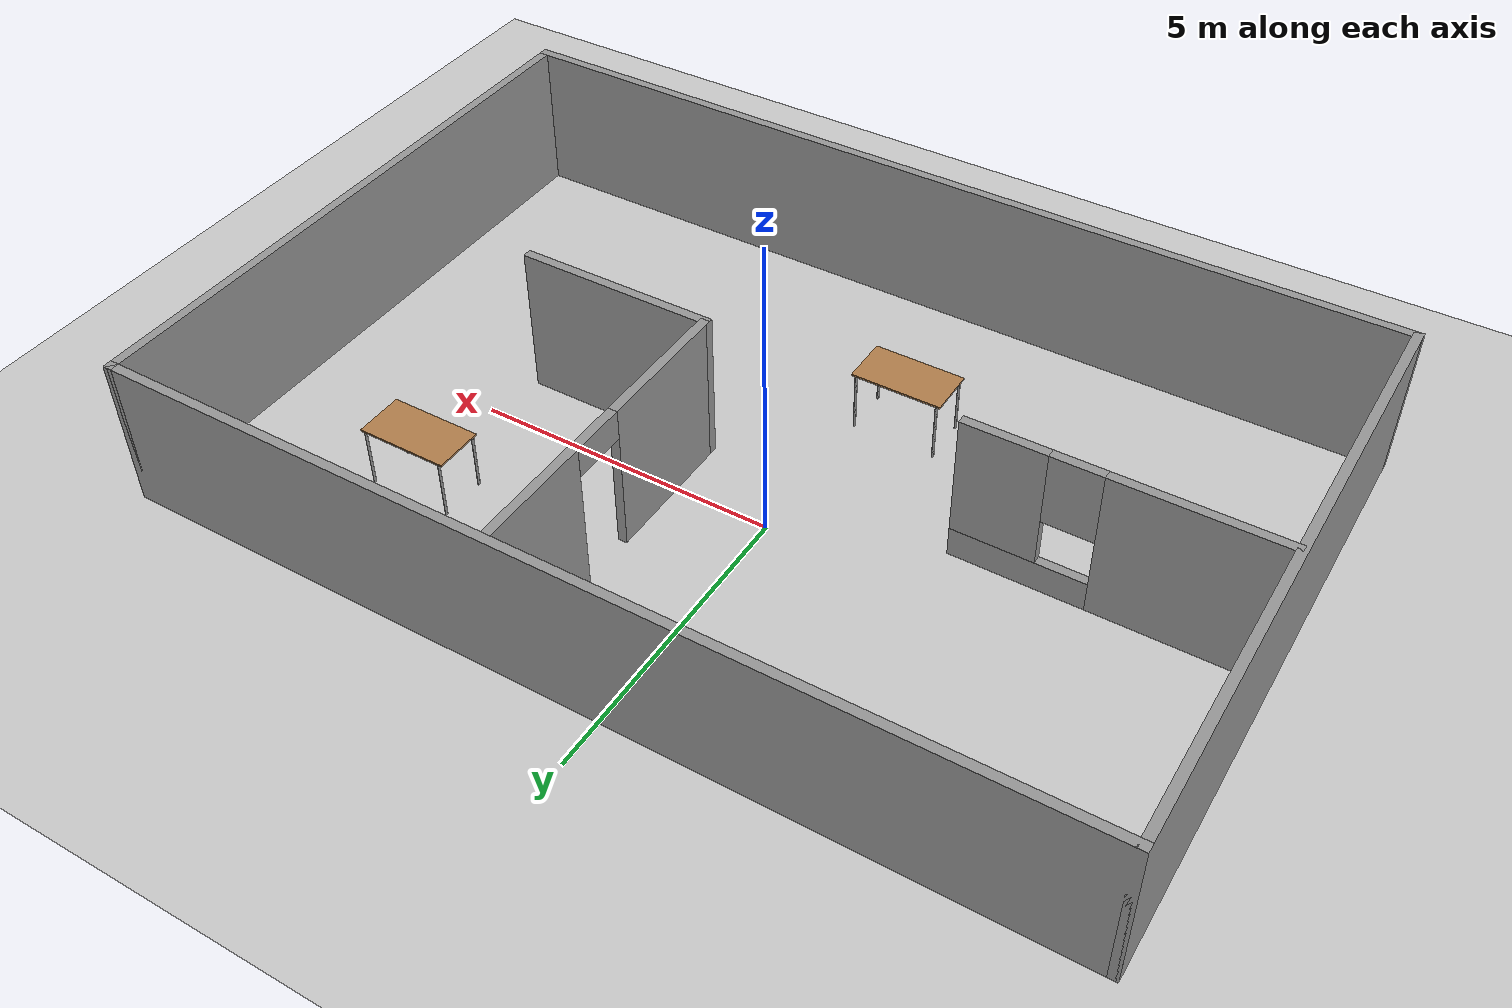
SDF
<sdf version="1.7">
 <world name="default">
  <light name="sun" type="directional">
   <pose>0 0 10 0 -0 0</pose>
   <diffuse>0.8 0.8 0.8 1</diffuse>
   <specular>0.2 0.2 0.2 1</specular>
   <attenuation>
    <range>1000</range>
    <constant>0.9</constant>
    <linear>0.01</linear>
    <quadratic>0.001</quadratic>
   </attenuation>
   <direction>-0.5 0.1 -0.9</direction>
   <spot><inner_angle>0</inner_angle><outer_angle>0</outer_angle><falloff>0</falloff></spot>
  </light>
  <model name="ground_plane">
   <static>1</static>
   <link name="link">
    <collision name="collision">
     <geometry><plane><normal>0 0 1</normal><size>100 100</size></plane></geometry>
     <surface>
      <contact><collide_bitmask>65535</collide_bitmask></contact>
      <friction><ode><mu>100</mu><mu2>50</mu2></ode></friction>
     </surface>
    </collision>
    <visual name="visual">
     <cast_shadows>0</cast_shadows>
     <geometry><plane><normal>0 0 1</normal><size>100 100</size></plane></geometry>
     <material>
      <script><uri>file://media/materials/scripts/gazebo.material</uri><name>Gazebo/Grey</name></script>
     </material>
    </visual>
   </link>
  </model>
  <gravity>0 0 -9.8</gravity>
  <magnetic_field>6e-06 2.3e-05 -4.2e-05</magnetic_field>
  <atmosphere type="adiabatic"/>
  <physics type="ode">
   <max_step_size>0.001</max_step_size>
   <real_time_factor>1</real_time_factor>
   <real_time_update_rate>1000</real_time_update_rate>
  </physics>
  <scene><ambient>0.4 0.4 0.4 1</ambient><background>0.7 0.7 0.7 1</background><shadows>1</shadows></scene>
  <spherical_coordinates>
   <surface_model>EARTH_WGS84</surface_model>
   <latitude_deg>0</latitude_deg>
   <longitude_deg>0</longitude_deg>
   <elevation>0</elevation>
   <heading_deg>0</heading_deg>
  </spherical_coordinates>
  <model name="outdoor">
   <pose>0.463872 -0.912677 0 0 -0 0</pose>
   <link name="Wall_1">
    <collision name="Wall_1_Collision">
     <geometry><box><size>15.5 0.15 2.5</size></box></geometry>
     <pose>0 0 1.25 0 -0 0</pose>
    </collision>
    <visual name="Wall_1_Visual">
     <pose>0 0 1.25 0 -0 0</pose>
     <geometry><box><size>15.5 0.15 2.5</size></box></geometry>
     <material>
      <script><uri>file://media/materials/scripts/gazebo.material</uri><name>Gazebo/Grey</name></script>
      <ambient>1 1 1 1</ambient>
     </material>
     <meta><layer>0</layer></meta>
    </visual>
    <pose>0 5.05 0 0 -0 0</pose>
   </link>
   <link name="Wall_11">
    <pose>1.16516 2.46912 0 0 -0 1.5708</pose>
    <visual name="Wall_11_Visual_0">
     <pose>-1.44308 0 1.25 0 -0 0</pose>
     <geometry><box><size>2.36384 0.15 2.5</size></box></geometry>
     <material>
      <script><uri>file://media/materials/scripts/gazebo.material</uri><name>Gazebo/Grey</name></script>
      <ambient>1 1 1 1</ambient>
     </material>
     <meta><layer>0</layer></meta>
    </visual>
    <collision name="Wall_11_Collision_0">
     <geometry><box><size>2.36384 0.15 2.5</size></box></geometry>
     <pose>-1.44308 0 1.25 0 -0 0</pose>
    </collision>
    <visual name="Wall_11_Visual_1">
     <pose>1.63192 0 1.25 0 -0 0</pose>
     <geometry><box><size>1.98616 0.15 2.5</size></box></geometry>
     <material>
      <script><uri>file://media/materials/scripts/gazebo.material</uri><name>Gazebo/Grey</name></script>
      <ambient>1 1 1 1</ambient>
     </material>
     <meta><layer>0</layer></meta>
    </visual>
    <collision name="Wall_11_Collision_1">
     <geometry><box><size>1.98616 0.15 2.5</size></box></geometry>
     <pose>1.63192 0 1.25 0 -0 0</pose>
    </collision>
    <visual name="Wall_11_Visual_2">
     <pose>0.188842 0 2.25 0 -0 0</pose>
     <geometry><box><size>0.9 0.15 0.5</size></box></geometry>
     <material>
      <script><uri>file://media/materials/scripts/gazebo.material</uri><name>Gazebo/Grey</name></script>
      <ambient>1 1 1 1</ambient>
     </material>
     <meta><layer>0</layer></meta>
    </visual>
    <collision name="Wall_11_Collision_2">
     <geometry><box><size>0.9 0.15 0.5</size></box></geometry>
     <pose>0.188842 0 2.25 0 -0 0</pose>
    </collision>
   </link>
   <link name="Wall_2">
    <collision name="Wall_2_Collision">
     <geometry><box><size>10.25 0.15 2.5</size></box></geometry>
     <pose>0 0 1.25 0 -0 0</pose>
    </collision>
    <visual name="Wall_2_Visual">
     <pose>0 0 1.25 0 -0 0</pose>
     <geometry><box><size>10.25 0.15 2.5</size></box></geometry>
     <material>
      <script><uri>file://media/materials/scripts/gazebo.material</uri><name>Gazebo/Grey</name></script>
      <ambient>1 1 1 1</ambient>
     </material>
     <meta><layer>0</layer></meta>
    </visual>
    <pose>7.675 0 0 0 -0 -1.5708</pose>
   </link>
   <link name="Wall_3">
    <collision name="Wall_3_Collision">
     <geometry><box><size>15.5 0.15 2.5</size></box></geometry>
     <pose>0 0 1.25 0 -0 0</pose>
    </collision>
    <visual name="Wall_3_Visual">
     <pose>0 0 1.25 0 -0 0</pose>
     <geometry><box><size>15.5 0.15 2.5</size></box></geometry>
     <material>
      <script><uri>file://media/materials/scripts/gazebo.material</uri><name>Gazebo/Grey</name></script>
      <ambient>1 1 1 1</ambient>
     </material>
     <meta><layer>0</layer></meta>
    </visual>
    <pose>0 -5.05 0 0 -0 3.14159</pose>
   </link>
   <link name="Wall_4">
    <collision name="Wall_4_Collision">
     <geometry><box><size>10.25 0.15 2.5</size></box></geometry>
     <pose>0 0 1.25 0 -0 0</pose>
    </collision>
    <visual name="Wall_4_Visual">
     <pose>0 0 1.25 0 -0 0</pose>
     <geometry><box><size>10.25 0.15 2.5</size></box></geometry>
     <material>
      <script><uri>file://media/materials/scripts/gazebo.material</uri><name>Gazebo/Grey</name></script>
      <ambient>1 1 1 1</ambient>
     </material>
     <meta><layer>0</layer></meta>
    </visual>
    <pose>-7.675 0 0 0 -0 1.5708</pose>
   </link>
   <link name="Wall_7">
    <collision name="Wall_7_Collision">
     <geometry><box><size>3.25 0.15 2.5</size></box></geometry>
     <pose>0 0 1.25 0 -0 0</pose>
    </collision>
    <visual name="Wall_7_Visual">
     <pose>0 0 1.25 0 -0 0</pose>
     <geometry><box><size>3.25 0.15 2.5</size></box></geometry>
     <material>
      <script><uri>file://media/materials/scripts/gazebo.material</uri><name>Gazebo/Grey</name></script>
      <ambient>1 1 1 1</ambient>
     </material>
     <meta><layer>0</layer></meta>
    </visual>
    <pose>2.71516 -0.080879 0 0 -0 0</pose>
   </link>
   <link name="Wall_9">
    <pose>-5.31485 -0.070487 0 0 -0 0</pose>
    <visual name="Wall_9_Visual_0">
     <pose>-1.05959 0 1.25 0 -0 0</pose>
     <geometry><box><size>2.63082 0.15 2.5</size></box></geometry>
     <material>
      <script><uri>file://media/materials/scripts/gazebo.material</uri><name>Gazebo/Grey</name></script>
      <ambient>1 1 1 1</ambient>
     </material>
     <meta><layer>0</layer></meta>
    </visual>
    <collision name="Wall_9_Collision_0">
     <geometry><box><size>2.63082 0.15 2.5</size></box></geometry>
     <pose>-1.05959 0 1.25 0 -0 0</pose>
    </collision>
    <visual name="Wall_9_Visual_1">
     <pose>1.31541 0 0.25 0 -0 0</pose>
     <geometry><box><size>2.11918 0.15 0.5</size></box></geometry>
     <material>
      <script><uri>file://media/materials/scripts/gazebo.material</uri><name>Gazebo/Grey</name></script>
      <ambient>1 1 1 1</ambient>
     </material>
     <meta><layer>0</layer></meta>
    </visual>
    <collision name="Wall_9_Collision_1">
     <geometry><box><size>2.11918 0.15 0.5</size></box></geometry>
     <pose>1.31541 0 0.25 0 -0 0</pose>
    </collision>
    <visual name="Wall_9_Visual_2">
     <pose>1.71541 0 1.5 0 -0 0</pose>
     <geometry><box><size>1.31918 0.15 2</size></box></geometry>
     <material>
      <script><uri>file://media/materials/scripts/gazebo.material</uri><name>Gazebo/Grey</name></script>
      <ambient>1 1 1 1</ambient>
     </material>
     <meta><layer>0</layer></meta>
    </visual>
    <collision name="Wall_9_Collision_2">
     <geometry><box><size>1.31918 0.15 2</size></box></geometry>
     <pose>1.71541 0 1.5 0 -0 0</pose>
    </collision>
    <visual name="Wall_9_Visual_3">
     <pose>0.655821 0 1.9 0 -0 0</pose>
     <geometry><box><size>0.8 0.15 1.2</size></box></geometry>
     <material>
      <script><uri>file://media/materials/scripts/gazebo.material</uri><name>Gazebo/Grey</name></script>
      <ambient>1 1 1 1</ambient>
     </material>
     <meta><layer>0</layer></meta>
    </visual>
    <collision name="Wall_9_Collision_3">
     <geometry><box><size>0.8 0.15 1.2</size></box></geometry>
     <pose>0.655821 0 1.9 0 -0 0</pose>
    </collision>
   </link>
   <static>1</static>
  </model>
  <model name="table">
   <static>1</static>
   <link name="link">
    <collision name="surface">
     <pose>0 0 1 0 -0 0</pose>
     <geometry><box><size>1.5 0.8 0.03</size></box></geometry>
     <surface><friction><ode><mu>0.6</mu><mu2>0.6</mu2></ode></friction></surface>
    </collision>
    <visual name="visual1">
     <pose>0 0 1 0 -0 0</pose>
     <geometry><box><size>1.5 0.8 0.03</size></box></geometry>
     <material>
      <script><uri>file://media/materials/scripts/gazebo.material</uri><name>Gazebo/Wood</name></script>
     </material>
    </visual>
    <collision name="front_left_leg">
     <pose>0.68 0.38 0.5 0 -0 0</pose>
     <geometry><cylinder><radius>0.02</radius><length>1</length></cylinder></geometry>
    </collision>
    <visual name="front_left_leg">
     <pose>0.68 0.38 0.5 0 -0 0</pose>
     <geometry><cylinder><radius>0.02</radius><length>1</length></cylinder></geometry>
     <material>
      <script><uri>file://media/materials/scripts/gazebo.material</uri><name>Gazebo/Grey</name></script>
     </material>
    </visual>
    <collision name="front_right_leg">
     <pose>0.68 -0.38 0.5 0 -0 0</pose>
     <geometry><cylinder><radius>0.02</radius><length>1</length></cylinder></geometry>
    </collision>
    <visual name="front_right_leg">
     <pose>0.68 -0.38 0.5 0 -0 0</pose>
     <geometry><cylinder><radius>0.02</radius><length>1</length></cylinder></geometry>
     <material>
      <script><uri>file://media/materials/scripts/gazebo.material</uri><name>Gazebo/Grey</name></script>
     </material>
    </visual>
    <collision name="back_right_leg">
     <pose>-0.68 -0.38 0.5 0 -0 0</pose>
     <geometry><cylinder><radius>0.02</radius><length>1</length></cylinder></geometry>
    </collision>
    <visual name="back_right_leg">
     <pose>-0.68 -0.38 0.5 0 -0 0</pose>
     <geometry><cylinder><radius>0.02</radius><length>1</length></cylinder></geometry>
     <material>
      <script><uri>file://media/materials/scripts/gazebo.material</uri><name>Gazebo/Grey</name></script>
     </material>
    </visual>
    <collision name="back_left_leg">
     <pose>-0.68 0.38 0.5 0 -0 0</pose>
     <geometry><cylinder><radius>0.02</radius><length>1</length></cylinder></geometry>
    </collision>
    <visual name="back_left_leg">
     <pose>-0.68 0.38 0.5 0 -0 0</pose>
     <geometry><cylinder><radius>0.02</radius><length>1</length></cylinder></geometry>
     <material>
      <script><uri>file://media/materials/scripts/gazebo.material</uri><name>Gazebo/Grey</name></script>
     </material>
    </visual>
   </link>
   <pose>4.82651 1.80186 0 0 -0 0</pose>
  </model>
  <model name="table_0">
   <static>1</static>
   <link name="link">
    <collision name="surface">
     <pose>0 0 1 0 -0 0</pose>
     <geometry><box><size>1.5 0.8 0.03</size></box></geometry>
     <surface><friction><ode><mu>0.6</mu><mu2>0.6</mu2></ode></friction></surface>
    </collision>
    <visual name="visual1">
     <pose>0 0 1 0 -0 0</pose>
     <geometry><box><size>1.5 0.8 0.03</size></box></geometry>
     <material>
      <script><uri>file://media/materials/scripts/gazebo.material</uri><name>Gazebo/Wood</name></script>
     </material>
    </visual>
    <collision name="front_left_leg">
     <pose>0.68 0.38 0.5 0 -0 0</pose>
     <geometry><cylinder><radius>0.02</radius><length>1</length></cylinder></geometry>
    </collision>
    <visual name="front_left_leg">
     <pose>0.68 0.38 0.5 0 -0 0</pose>
     <geometry><cylinder><radius>0.02</radius><length>1</length></cylinder></geometry>
     <material>
      <script><uri>file://media/materials/scripts/gazebo.material</uri><name>Gazebo/Grey</name></script>
     </material>
    </visual>
    <collision name="front_right_leg">
     <pose>0.68 -0.38 0.5 0 -0 0</pose>
     <geometry><cylinder><radius>0.02</radius><length>1</length></cylinder></geometry>
    </collision>
    <visual name="front_right_leg">
     <pose>0.68 -0.38 0.5 0 -0 0</pose>
     <geometry><cylinder><radius>0.02</radius><length>1</length></cylinder></geometry>
     <material>
      <script><uri>file://media/materials/scripts/gazebo.material</uri><name>Gazebo/Grey</name></script>
     </material>
    </visual>
    <collision name="back_right_leg">
     <pose>-0.68 -0.38 0.5 0 -0 0</pose>
     <geometry><cylinder><radius>0.02</radius><length>1</length></cylinder></geometry>
    </collision>
    <visual name="back_right_leg">
     <pose>-0.68 -0.38 0.5 0 -0 0</pose>
     <geometry><cylinder><radius>0.02</radius><length>1</length></cylinder></geometry>
     <material>
      <script><uri>file://media/materials/scripts/gazebo.material</uri><name>Gazebo/Grey</name></script>
     </material>
    </visual>
    <collision name="back_left_leg">
     <pose>-0.68 0.38 0.5 0 -0 0</pose>
     <geometry><cylinder><radius>0.02</radius><length>1</length></cylinder></geometry>
    </collision>
    <visual name="back_left_leg">
     <pose>-0.68 0.38 0.5 0 -0 0</pose>
     <geometry><cylinder><radius>0.02</radius><length>1</length></cylinder></geometry>
     <material>
      <script><uri>file://media/materials/scripts/gazebo.material</uri><name>Gazebo/Grey</name></script>
     </material>
    </visual>
   </link>
   <pose>-0.673941 -3.01593 0 0 -0 0</pose>
  </model>
 </world>
</sdf>
